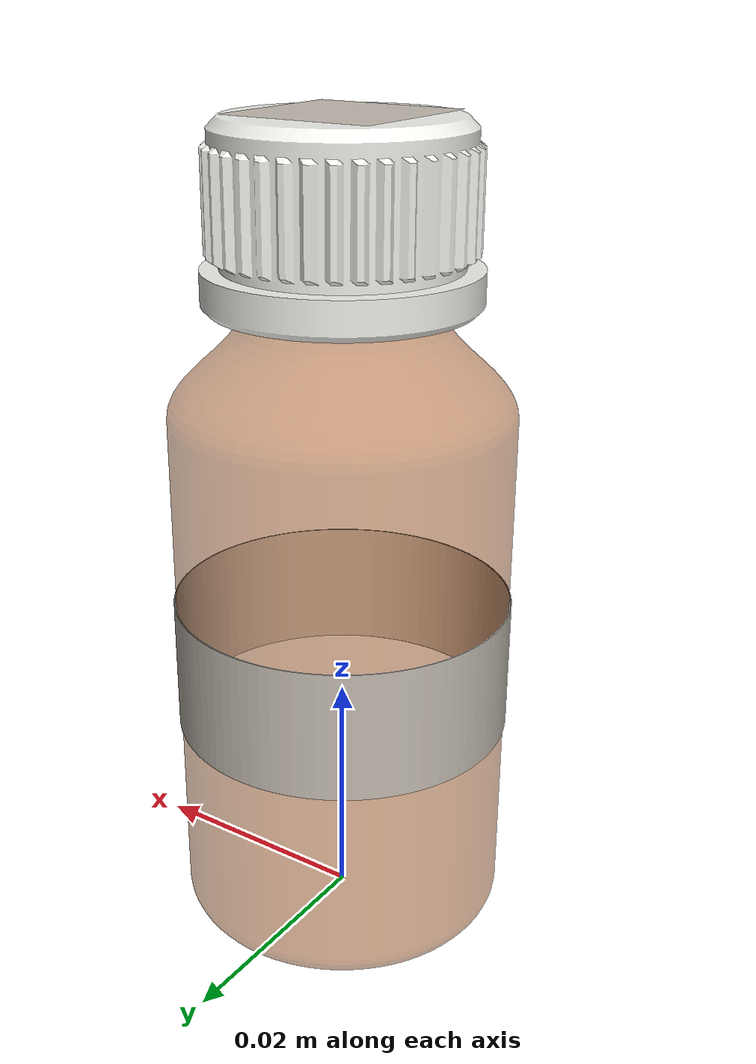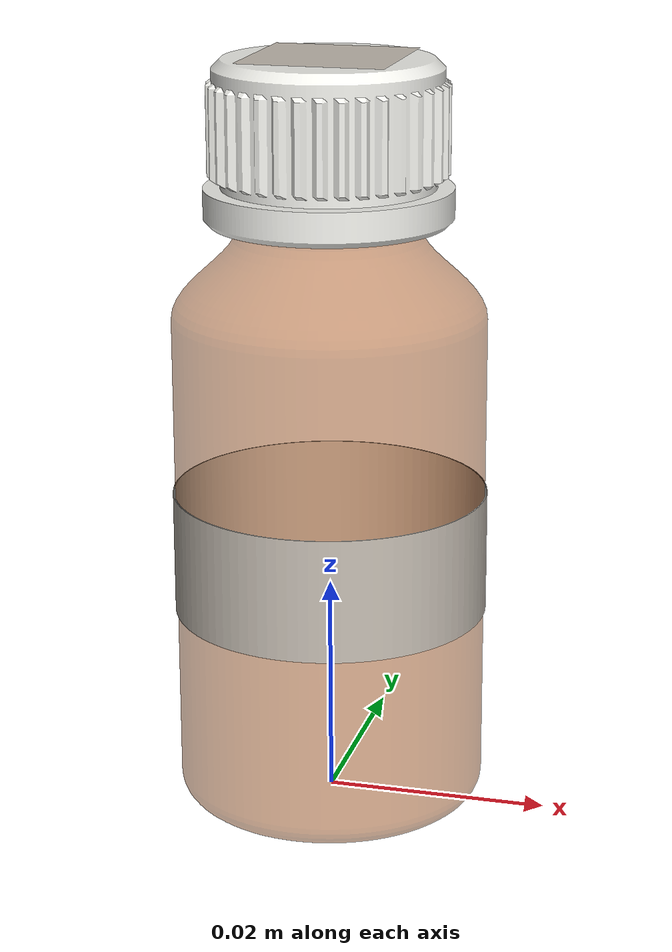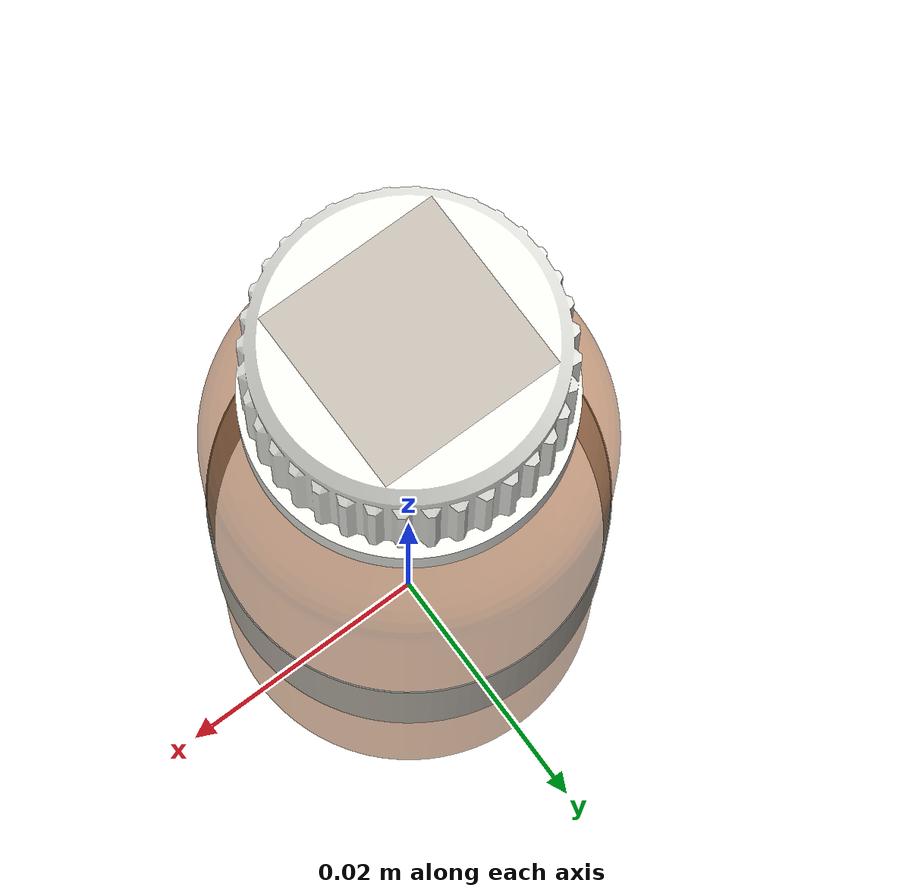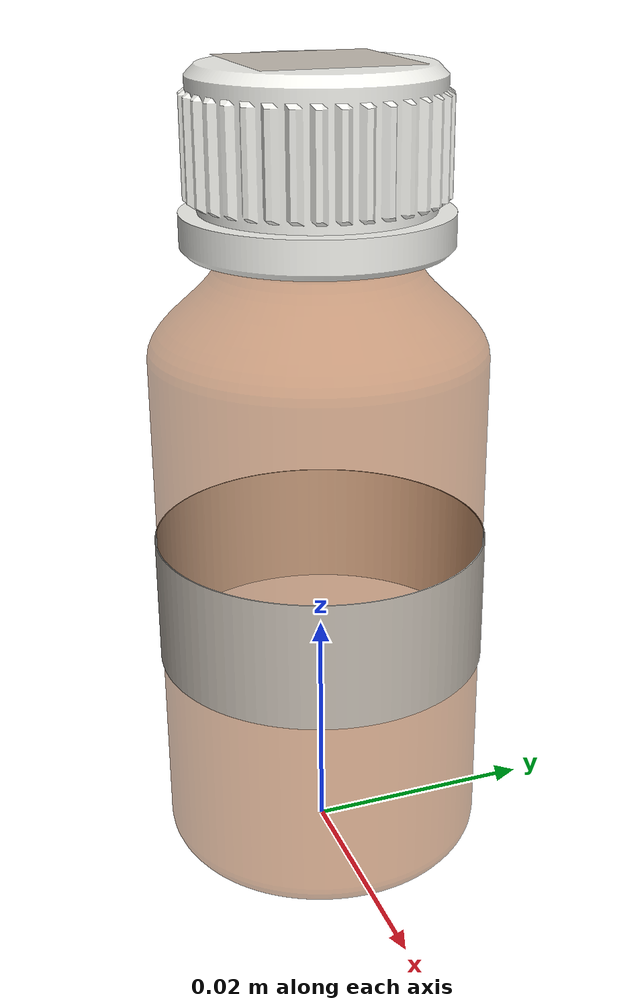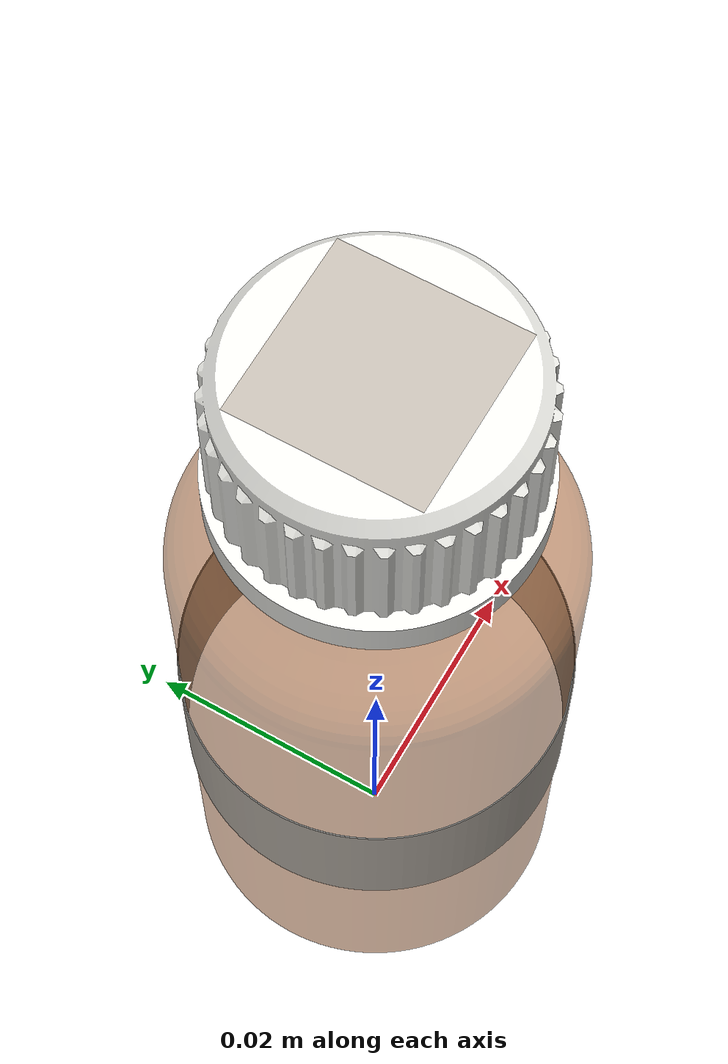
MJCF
<!-- Generated by tools/build_labelled_bottles.py. Citronellyl acetate (liquid),
     20 ml, marker 161, barcode 2001472378572.
     Origin bottom-centre, +Z up, the label's front facing -Y. -->
<mujoco model="SMP-0162">
  <asset>
    <mesh name="flask_20ml_glass" file="meshes/flask_20ml_glass.obj" inertia="exact"/>
    <mesh name="flask_20ml_cap" file="meshes/flask_20ml_cap.obj" inertia="exact"/>
    <mesh name="flask_20ml_label" file="meshes/flask_20ml_label.obj" inertia="shell"/>
    <mesh name="flask_20ml_label_back" file="meshes/flask_20ml_label_back.obj" inertia="shell"/>
    <mesh name="flask_20ml_cap_label" file="meshes/flask_20ml_cap_label.obj" inertia="shell"/>
    <texture name="label" type="2d" file="textures/SMP-0162.png"/>
    <material name="label" texture="label" specular="0.05" shininess="0.1"/>
    <texture name="cap_label" type="2d" file="textures/SMP-0162_cap.png"/>
    <material name="cap_label" texture="cap_label" specular="0.05" shininess="0.1"/>
  </asset>
  <worldbody>
    <body name="SMP-0162">
      <geom name="glass" type="mesh" mesh="flask_20ml_glass" rgba="0.620 0.280 0.050 0.500" density="2500"/>
      <geom name="cap" type="mesh" mesh="flask_20ml_cap" rgba="0.930 0.930 0.910 1.000" density="900"/>
      <geom name="label" type="mesh" mesh="flask_20ml_label" material="label" contype="0" conaffinity="0" mass="0"/>
      <geom name="label_back" type="mesh" mesh="flask_20ml_label_back" rgba="0.950 0.950 0.930 1" contype="0" conaffinity="0" mass="0"/>
      <geom name="cap_label" type="mesh" mesh="flask_20ml_cap_label" material="cap_label" contype="0" conaffinity="0" mass="0"/>
    </body>
  </worldbody>
</mujoco>
